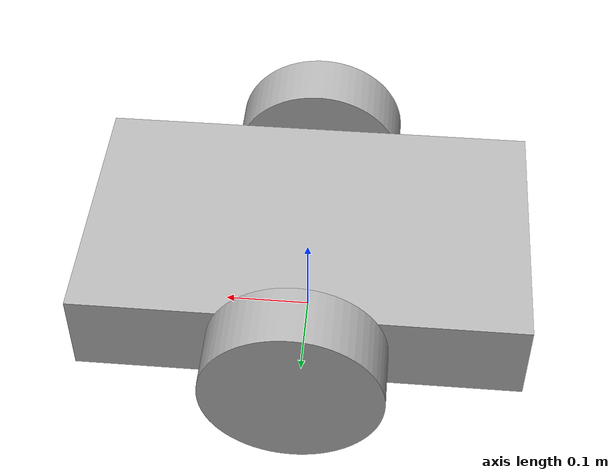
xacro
<?xml version="1.0" ?>
<robot name="lcm" xmlns:xacro="http://www.ros.org/wiki/xacro">

<xacro:include filename="$(find lcm_description)/urdf/materials.xacro" />
<xacro:include filename="$(find lcm_description)/urdf/lcm.trans" />
<xacro:include filename="$(find lcm_description)/urdf/lcm.gazebo" />
<link name="base_link">
  <inertial>
    <origin xyz="1.386213583910284e-05 5.694968099553096e-17 0.09849166735566821" rpy="0 0 0"/>
    <mass value="18.213631742017775"/>
    <inertia ixx="0.150556" iyy="0.399796" izz="0.51678" ixy="0.0" iyz="0.0" ixz="1.7e-05"/>
  </inertial>
  <visual>
    <origin xyz="0 0 0" rpy="0 0 0"/>
    <geometry>
      <mesh filename="package://lcm_description/meshes/base_link.stl" scale="0.001 0.001 0.001"/>
    </geometry>
    <material name="silver"/>
  </visual>
  <collision>
    <origin xyz="0 0 0" rpy="0 0 0"/>
    <geometry>
      <mesh filename="package://lcm_description/meshes/base_link.stl" scale="0.001 0.001 0.001"/>
    </geometry>
  </collision>
</link>

<link name="right_wheel_1">
  <inertial>
    <origin xyz="1.6542923143205804e-17 -0.034999999999999976 1.3877787807814457e-17" rpy="0 0 0"/>
    <mass value="2.0451768174869542"/>
    <inertia ixx="0.005948" iyy="0.010226" izz="0.005948" ixy="-0.0" iyz="0.0" ixz="0.0"/>
  </inertial>
  <visual>
    <origin xyz="-0.0 0.15 -0.1" rpy="0 0 0"/>
    <geometry>
      <mesh filename="package://lcm_description/meshes/right_wheel_1.stl" scale="0.001 0.001 0.001"/>
    </geometry>
    <material name="silver"/>
  </visual>
  <collision>
    <origin xyz="-0.0 0.15 -0.1" rpy="0 0 0"/>
    <geometry>
      <mesh filename="package://lcm_description/meshes/right_wheel_1.stl" scale="0.001 0.001 0.001"/>
    </geometry>
  </collision>
</link>

<link name="left_wheel_1">
  <inertial>
    <origin xyz="1.6542923143205804e-17 0.035 1.3877787807814457e-17" rpy="0 0 0"/>
    <mass value="2.0451768174869542"/>
    <inertia ixx="0.005948" iyy="0.010226" izz="0.005948" ixy="0.0" iyz="0.0" ixz="0.0"/>
  </inertial>
  <visual>
    <origin xyz="-0.0 -0.15 -0.1" rpy="0 0 0"/>
    <geometry>
      <mesh filename="package://lcm_description/meshes/left_wheel_1.stl" scale="0.001 0.001 0.001"/>
    </geometry>
    <material name="silver"/>
  </visual>
  <collision>
    <origin xyz="-0.0 -0.15 -0.1" rpy="0 0 0"/>
    <geometry>
      <mesh filename="package://lcm_description/meshes/left_wheel_1.stl" scale="0.001 0.001 0.001"/>
    </geometry>
  </collision>
</link>

<joint name="Revolute 1" type="continuous">
  <origin xyz="0.0 -0.15 0.1" rpy="0 0 0"/>
  <parent link="base_link"/>
  <child link="right_wheel_1"/>
  <axis xyz="0.0 1.0 0.0"/>
</joint>

<joint name="Revolute 2" type="continuous">
  <origin xyz="0.0 0.15 0.1" rpy="0 0 0"/>
  <parent link="base_link"/>
  <child link="left_wheel_1"/>
  <axis xyz="0.0 1.0 0.0"/>
</joint>

</robot>

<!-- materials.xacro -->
<robot name="lcm" xmlns:xacro="http://www.ros.org/wiki/xacro" >

<material name="silver">
  <color rgba="0.700 0.700 0.700 1.000"/>
</material>

</robot>

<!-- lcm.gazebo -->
<robot name="lcm" xmlns:xacro="http://www.ros.org/wiki/xacro" >

<xacro:property name="body_color" value="Gazebo/Silver" />

<gazebo>
  <plugin name="control" filename="libgazebo_ros_control.so"/>
</gazebo>
<gazebo reference="base_link">
  <material>${body_color}</material>
  <mu1>0.001</mu1>
  <mu2>0.001</mu2>
  <selfCollide>true</selfCollide>
  <gravity>true</gravity>
</gazebo>

<gazebo reference="right_wheel_1">
  <material>${body_color}</material>
  <mu1>1500</mu1>
  <mu2>1500</mu2>
  <selfCollide>true</selfCollide>
</gazebo>

<gazebo reference="left_wheel_1">
  <material>${body_color}</material>
  <mu1>1500</mu1>
  <mu2>1500</mu2>
  <selfCollide>true</selfCollide>
</gazebo>

<gazebo>
  <plugin name="differential_drive_controller" filename="libgazebo_ros_diff_drive.so">

    <!-- Plugin update rate in Hz -->
    <updateRate>100</updateRate>

    <!-- Name of left joint, defaults to `left_joint` -->
    <leftJoint>Revolute 2</leftJoint>

    <!-- Name of right joint, defaults to `right_joint` -->
    <rightJoint>Revolute 1</rightJoint>

    <!-- The distance from the center of one wheel to the other, in meters, defaults to 0.34 m -->
    <wheelSeparation>0.3</wheelSeparation>

    <!-- Diameter of the wheels, in meters, defaults to 0.15 m -->
    <wheelDiameter>0.2</wheelDiameter>

    <!-- Wheel acceleration, in rad/s^2, defaults to 0.0 rad/s^2 -->
    <wheelAcceleration>1.0</wheelAcceleration>

    <!-- Maximum torque which the wheels can produce, in Nm, defaults to 5 Nm -->
    <wheelTorque>50</wheelTorque>

    <!-- Topic to receive geometry_msgs/Twist message commands, defaults to `cmd_vel` -->
    <commandTopic>cmd_vel</commandTopic>

    <!-- Topic to publish nav_msgs/Odometry messages, defaults to `odom` -->
    <odometryTopic>odom</odometryTopic>

    <!-- Odometry frame, defaults to `odom` -->
    <odometryFrame>odom</odometryFrame>

    <!-- Robot frame to calculate odometry from, defaults to `base_footprint` -->
    <robotBaseFrame>base_link</robotBaseFrame>

    <!-- Odometry source, 0 for ENCODER, 1 for WORLD, defaults to WORLD -->
    <odometrySource>1</odometrySource>

    <!-- Set to true to publish transforms for the wheel links, defaults to false -->
    <publishWheelTF>true</publishWheelTF>

    <!-- Set to true to publish transforms for the odometry, defaults to true -->
    <publishOdom>true</publishOdom>

    <!-- Set to true to publish sensor_msgs/JointState on /joint_states for the wheel joints, defaults to false -->
    <publishWheelJointState>true</publishWheelJointState>

    <!-- Set to true to swap right and left wheels, defaults to true -->
    <legacyMode>false</legacyMode>
  </plugin>
</gazebo>

<gazebo reference="base_link">
    <gravity>true</gravity>
    <sensor name="imu_sensor" type="imu">
      <always_on>true</always_on>
      <update_rate>100</update_rate>
      <visualize>true</visualize>
      <topic>__default_topic__</topic>
      <plugin filename="libgazebo_ros_imu_sensor.so" name="imu_plugin">
        <topicName>/imu_feedback</topicName>
        <bodyName>base_link</bodyName>
        <updateRateHZ>10.0</updateRateHZ>
        <gaussianNoise>0.0</gaussianNoise>
        <xyzOffset>0 0 0</xyzOffset>
        <rpyOffset>0 0 0</rpyOffset>
        <frameName>base_link</frameName>
        <initialOrientationAsReference>false</initialOrientationAsReference>
      </plugin>
      <pose>0 0 0 0 0 0</pose>
    </sensor>
  </gazebo>

</robot>
